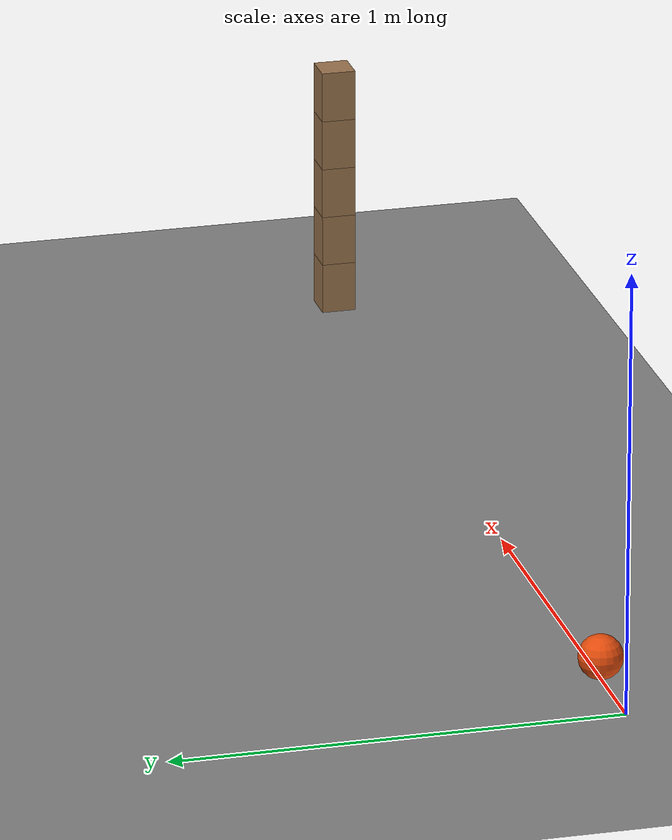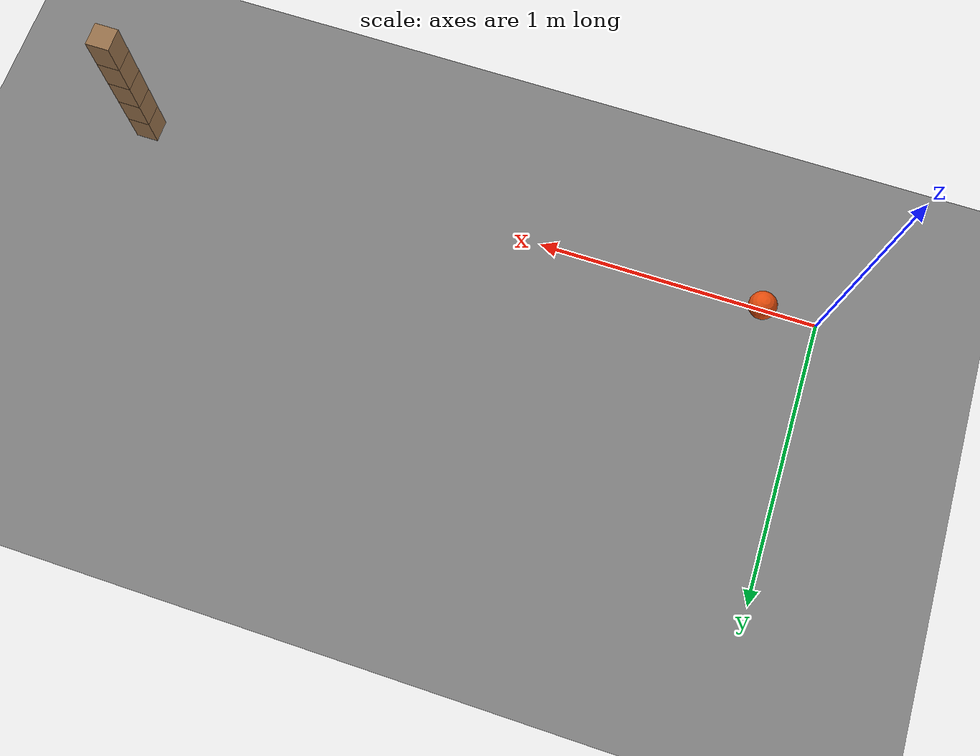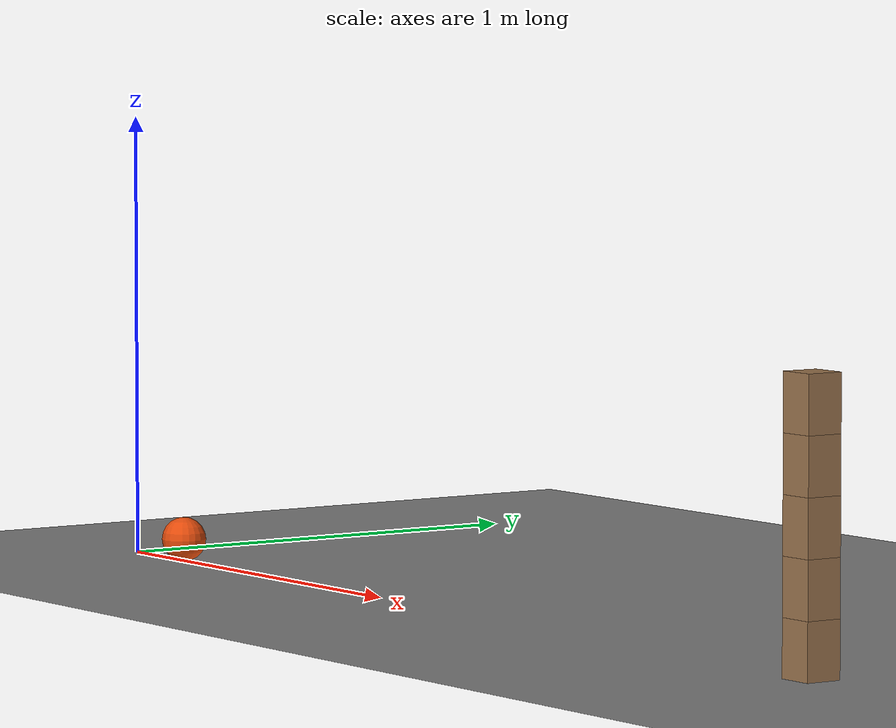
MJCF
<mujoco model="five_block_stack_knocked_from_below">
  <compiler angle="radian"/>
  <option timestep="0.002"/>
  <worldbody>
    <geom name="floor" type="plane" size="6 6 0.1" friction="0.8 0.005 0.002"/>
    <body name="block1" pos="2.5 0 0.06">
      <freejoint/>
      <geom name="block1" type="box" pos="0 0 0" size="0.04 0.04 0.06" mass="0.15" friction="0.9 0.005 0.0001" rgba="0.6 0.45 0.3 1"/>
    </body>
    <body name="block2" pos="2.5 0 0.18">
      <freejoint/>
      <geom name="block2" type="box" pos="0 0 0" size="0.04 0.04 0.06" mass="0.15" friction="0.9 0.005 0.0001" rgba="0.6 0.45 0.3 1"/>
    </body>
    <body name="block3" pos="2.5 0 0.3">
      <freejoint/>
      <geom name="block3" type="box" pos="0 0 0" size="0.04 0.04 0.06" mass="0.15" friction="0.9 0.005 0.0001" rgba="0.6 0.45 0.3 1"/>
    </body>
    <body name="block4" pos="2.5 0 0.42">
      <freejoint/>
      <geom name="block4" type="box" pos="0 0 0" size="0.04 0.04 0.06" mass="0.15" friction="0.9 0.005 0.0001" rgba="0.6 0.45 0.3 1"/>
    </body>
    <body name="block5" pos="2.5 0 0.54">
      <freejoint/>
      <geom name="block5" type="box" pos="0 0 0" size="0.04 0.04 0.06" mass="0.15" friction="0.9 0.005 0.0001" rgba="0.6 0.45 0.3 1"/>
    </body>
    <body name="pusher ball" pos="0.2 0 0.05">
      <freejoint/>
      <geom name="pusher ball" type="sphere" pos="0 0 0" size="0.05" mass="3" condim="6" friction="0.8 0.01 0.0005" solref="0.01 1" rgba="0.9 0.3 0.05 1"/>
    </body>
  </worldbody>
  <keyframe>
    <key name="start" qpos="2.5 0 0.06 1 0 0 0 2.5 0 0.18 1 0 0 0 2.5 0 0.3 1 0 0 0 2.5 0 0.42 1 0 0 0 2.5 0 0.54 1 0 0 0 0.2 0 0.05 1 0 0 0" qvel="0 0 0 0 0 0 0 0 0 0 0 0 0 0 0 0 0 0 0 0 0 0 0 0 0 0 0 0 0 0 3.5 0 0 0 70 0"/>
  </keyframe>
</mujoco>
